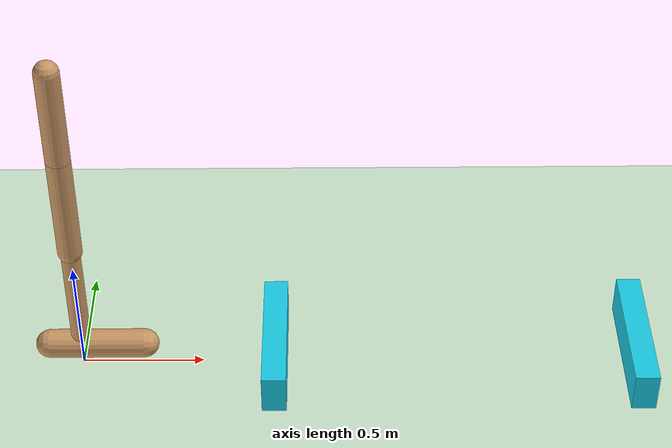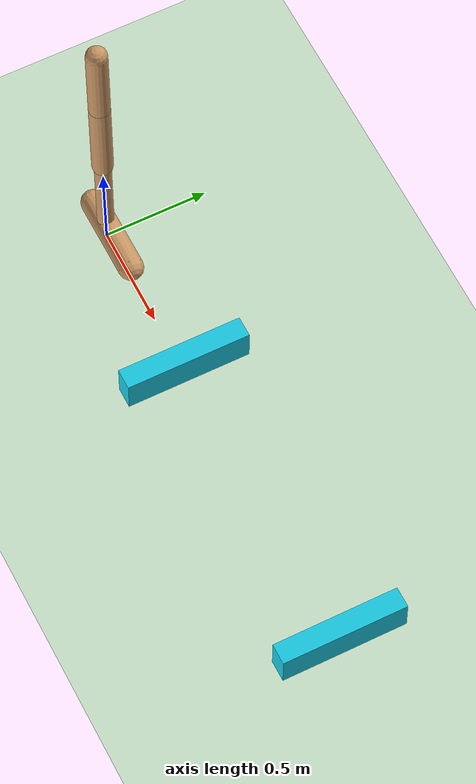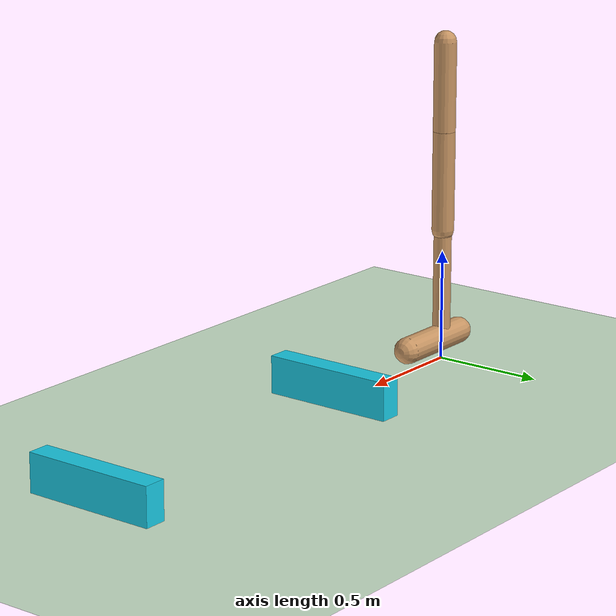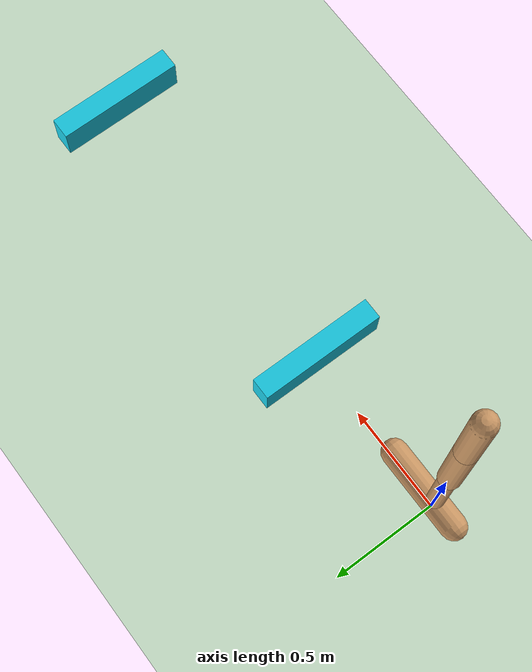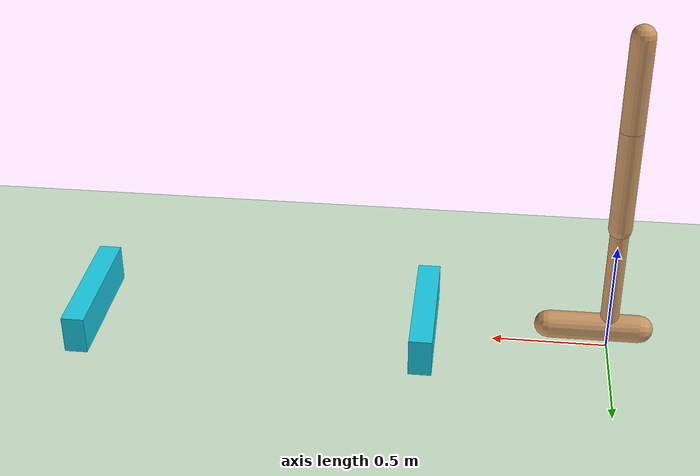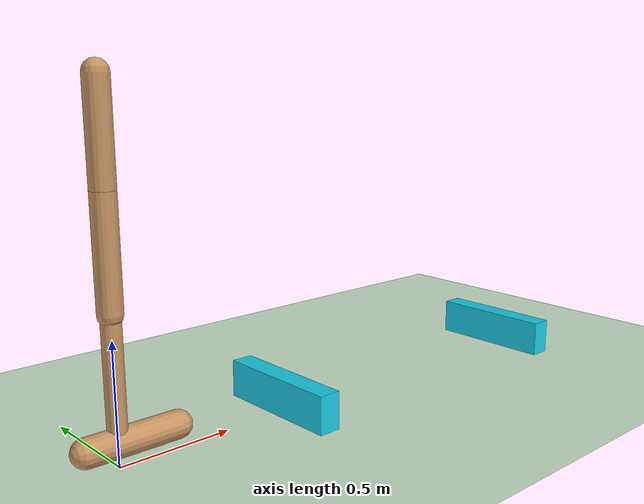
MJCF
<!--
Hopper model for `Hopper-v5`, based on openai/gym/Walker2d
modified by @saran_t
    - To not require `coordinate="global"`
-->
<mujoco model="hopper">
    <compiler angle="degree" inertiafromgeom="true"/>
    <default>
        <joint armature="1" damping="1" limited="true"/>
        <geom conaffinity="1" condim="1" contype="1" margin="0.001" material="geom" rgba="0.8 0.6 .4 1" solimp=".8 .8 .01" solref=".02 1"/>
        <motor ctrllimited="true" ctrlrange="-.4 .4"/>
    </default>
    <option integrator="RK4" timestep="0.002"/>
    <visual>
        <map znear="0.02"/>
    </visual>
    <worldbody>
        <light cutoff="100" diffuse="1 1 1" dir="-0 0 -1.3" directional="true" exponent="1" pos="0 0 1.3" specular=".1 .1 .1"/>
        <geom conaffinity="1" condim="3" name="floor" pos="0 0 0" rgba="0.8 0.9 0.8 1" size="20 20 .125" type="plane" material="MatPlane"/>
        <body name="torso" pos="0 0 1.25">
            <camera name="track" mode="trackcom" pos="0 -3 -0.25" xyaxes="1 0 0 0 0 1"/>
            <joint armature="0" axis="1 0 0" damping="0" limited="false" name="rootx" pos="0 0 -1.25" stiffness="0" type="slide"/>
            <joint armature="0" axis="0 0 1" damping="0" limited="false" name="rootz" pos="0 0 -1.25" ref="1.25" stiffness="0" type="slide"/>
            <joint armature="0" axis="0 1 0" damping="0" limited="false" name="rooty" pos="0 0 0" stiffness="0" type="hinge"/>
            <geom friction="0.9" name="torso_geom" size="0.05 0.19999999999999996" type="capsule"/>
            <body name="thigh" pos="0 0 -0.19999999999999996">
                <joint axis="0 -1 0" name="thigh_joint" pos="0 0 0" range="-150 0" type="hinge"/>
                <geom friction="0.9" pos="0 0 -0.22500000000000009" name="thigh_geom" size="0.05 0.22500000000000003" type="capsule"/>
                <body name="leg" pos="0 0 -0.70000000000000007">
                    <joint axis="0 -1 0" name="leg_joint" pos="0 0 0.25" range="-150 0" type="hinge"/>
                    <geom friction="0.9" name="leg_geom" size="0.04 0.25" type="capsule"/>
                    <body name="foot" pos="0.13 0 -0.35">
                        <joint axis="0 -1 0" name="foot_joint" pos="-0.13 0 0.1" range="-45 45" type="hinge"/>
                        <geom friction="2.0" pos="-0.065 0 0.1" quat="0.70710678118654757 0 -0.70710678118654746 0" name="foot_geom" size="0.06 0.195" type="capsule"/>
                    </body>
                </body>
            </body>
        </body>

        <body pos="0.8 0 .085" euler="0 0 0">
            <geom type="box" size="0.05 .3 .085" rgba="0.1 0.8 0.9 1"/>
        </body>
        <body pos="2.3 0 .085" euler="0 0 0">
            <geom type="box" size="0.05 .3 .085" rgba="0.1 0.8 0.9 1"/>
        </body>
    </worldbody>
    <actuator>
        <motor name="thigh_joint" ctrllimited="true" ctrlrange="-1.0 1.0" gear="200.0" joint="thigh_joint"/>
        <motor name="leg_joint" ctrllimited="true" ctrlrange="-1.0 1.0" gear="200.0" joint="leg_joint"/>
        <motor name="foot_joint" ctrllimited="true" ctrlrange="-1.0 1.0" gear="200.0" joint="foot_joint"/>
    </actuator>
        <asset>
                <texture type="skybox" name="skybox" builtin="gradient" mark="random" rgb1="0.4 0.6 0.8" rgb2="0 0 0" markrgb="1 1 1" width="800" height="800"/>
                <texture builtin="flat" height="1278" mark="cross" markrgb="1 1 1" name="texgeom" random="0.01" rgb1="0.8 0.6 0.4" rgb2="0.8 0.6 0.4" type="cube" width="127"/>
                <texture builtin="checker" height="100" name="texplane" rgb1="0 0 0" rgb2="0.8 0.8 0.8" type="2d" width="100"/>
                <material name="MatPlane" reflectance="0.5" shininess="1" specular="1" texrepeat="60 60" texture="texplane"/>
                <material name="geom" texture="texgeom" texuniform="true"/>
        </asset>
</mujoco>
